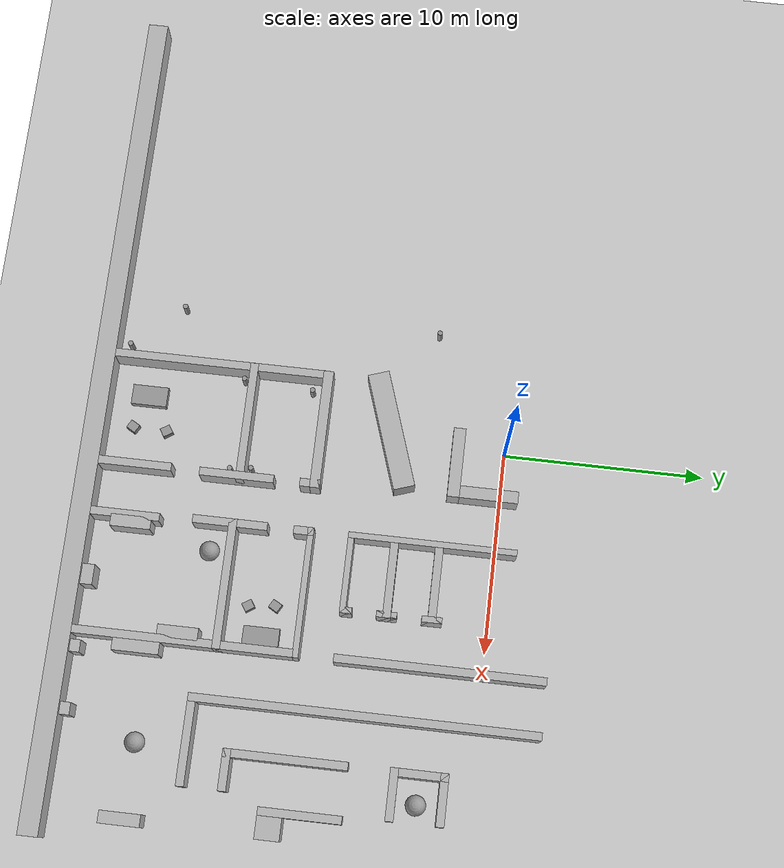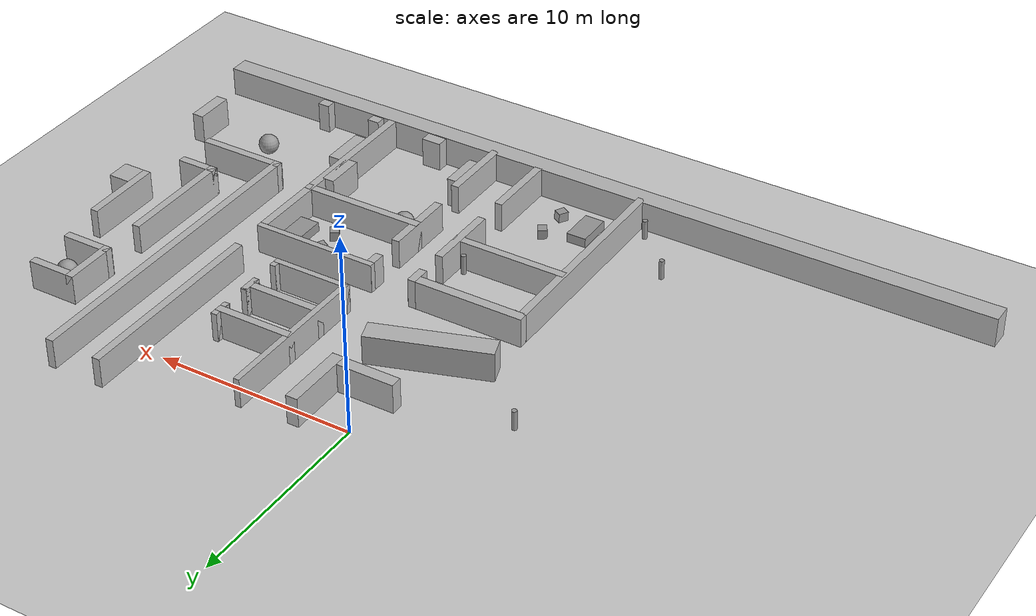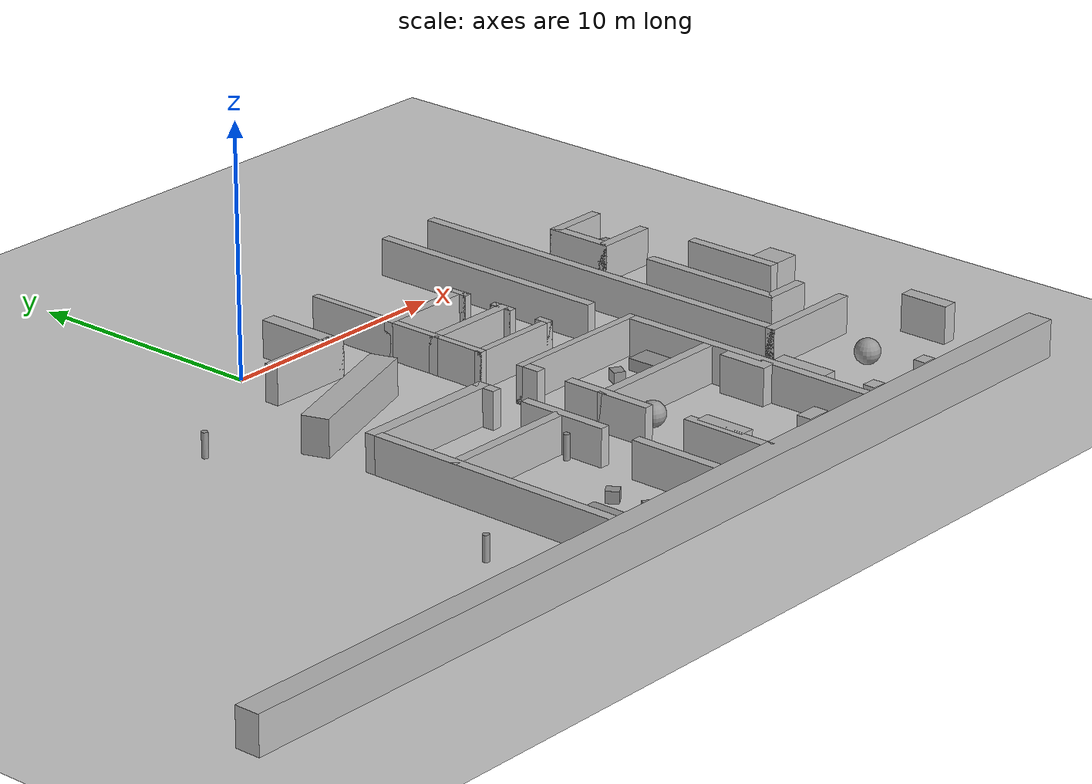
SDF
<sdf version="1.7">
 <world name="test_world">
  <model name="ground_plane">
   <static>1</static>
   <link name="link">
    <collision name="collision">
     <geometry><plane><normal>0 0 1</normal><size>100 100</size></plane></geometry>
    </collision>
    <visual name="visual">
     <geometry><plane><normal>0 0 1</normal><size>100 100</size></plane></geometry>
     <material>
      <script>
       <uri>file://media/materials/scripts/gazebo.material</uri>
       <name>__default__</name>
       <n>Gazebo/Grey</n>
      </script>
     </material>
    </visual>
   </link>
  </model>
  <model name="outer_bottom">
   <static>1</static>
   <pose>0 -20.5 0.75 0 -0 0</pose>
   <link name="link">
    <collision name="collision"><geometry><box><size>42 1 1.5</size></box></geometry></collision>
    <visual name="visual">
     <geometry><box><size>42 1 1.5</size></box></geometry>
     <material>
      <script>
       <uri>file://media/materials/scripts/gazebo.material</uri>
       <name>__default__</name>
       <n>Gazebo/Grey</n>
      </script>
     </material>
    </visual>
   </link>
  </model>
  <model name="hw_23">
   <static>1</static>
   <pose>-0.380805 -5.75282 0.75 0 -0 0.325273</pose>
   <link name="link">
    <collision name="collision"><geometry><box><size>6 1.07714 1.5</size></box></geometry></collision>
    <visual name="visual">
     <geometry><box><size>6 1.07714 1.5</size></box></geometry>
     <material>
      <script>
       <uri>file://media/materials/scripts/gazebo.material</uri>
       <name>__default__</name>
       <n>Gazebo/Grey</n>
      </script>
     </material>
    </visual>
   </link>
  </model>
  <model name="hw_24">
   <static>1</static>
   <pose>-0.05 -9.2 0.75 0 -0 0</pose>
   <link name="link">
    <collision name="collision"><geometry><box><size>6 0.5 1.5</size></box></geometry></collision>
    <visual name="visual">
     <geometry><box><size>6 0.5 1.5</size></box></geometry>
     <material>
      <script>
       <uri>file://media/materials/scripts/gazebo.material</uri>
       <name>__default__</name>
       <n>Gazebo/Grey</n>
      </script>
     </material>
    </visual>
   </link>
  </model>
  <model name="hw_25">
   <static>1</static>
   <pose>-0.05 -12.95 0.75 0 -0 0</pose>
   <link name="link">
    <collision name="collision"><geometry><box><size>6 0.4 1.5</size></box></geometry></collision>
    <visual name="visual">
     <geometry><box><size>6 0.4 1.5</size></box></geometry>
     <material>
      <script>
       <uri>file://media/materials/scripts/gazebo.material</uri>
       <name>__default__</name>
       <n>Gazebo/Grey</n>
      </script>
     </material>
    </visual>
   </link>
  </model>
  <model name="hw_31">
   <static>1</static>
   <pose>0.9 -2.35 0.75 0 -0 0</pose>
   <link name="link">
    <collision name="collision"><geometry><box><size>3.5 0.6 1.5</size></box></geometry></collision>
    <visual name="visual">
     <geometry><box><size>3.5 0.6 1.5</size></box></geometry>
     <material>
      <script>
       <uri>file://media/materials/scripts/gazebo.material</uri>
       <name>__default__</name>
       <n>Gazebo/Grey</n>
      </script>
     </material>
    </visual>
   </link>
  </model>
  <model name="hw_49">
   <static>1</static>
   <pose>6.95 -2.75 0.75 0 -0 0</pose>
   <link name="link">
    <collision name="collision"><geometry><box><size>4 0.4 1.5</size></box></geometry></collision>
    <visual name="visual">
     <geometry><box><size>4 0.4 1.5</size></box></geometry>
     <material>
      <script>
       <uri>file://media/materials/scripts/gazebo.material</uri>
       <name>__default__</name>
       <n>Gazebo/Grey</n>
      </script>
     </material>
    </visual>
   </link>
  </model>
  <model name="hw_50">
   <static>1</static>
   <pose>6.95 -4.95 0.75 0 -0 0</pose>
   <link name="link">
    <collision name="collision"><geometry><box><size>4 0.4 1.5</size></box></geometry></collision>
    <visual name="visual">
     <geometry><box><size>4 0.4 1.5</size></box></geometry>
     <material>
      <script>
       <uri>file://media/materials/scripts/gazebo.material</uri>
       <name>__default__</name>
       <n>Gazebo/Grey</n>
      </script>
     </material>
    </visual>
   </link>
  </model>
  <model name="hw_51">
   <static>1</static>
   <pose>6.95 -7.1 0.75 0 -0 0</pose>
   <link name="link">
    <collision name="collision"><geometry><box><size>4 0.3 1.5</size></box></geometry></collision>
    <visual name="visual">
     <geometry><box><size>4 0.3 1.5</size></box></geometry>
     <material>
      <script>
       <uri>file://media/materials/scripts/gazebo.material</uri>
       <name>__default__</name>
       <n>Gazebo/Grey</n>
      </script>
     </material>
    </visual>
   </link>
  </model>
  <model name="hw_53">
   <static>1</static>
   <pose>8.15 -9.1 0.75 0 -0 0</pose>
   <link name="link">
    <collision name="collision"><geometry><box><size>6.4 0.3 1.5</size></box></geometry></collision>
    <visual name="visual">
     <geometry><box><size>6.4 0.3 1.5</size></box></geometry>
     <material>
      <script>
       <uri>file://media/materials/scripts/gazebo.material</uri>
       <name>__default__</name>
       <n>Gazebo/Grey</n>
      </script>
     </material>
    </visual>
   </link>
  </model>
  <model name="hw_54">
   <static>1</static>
   <pose>8.15 -12.95 0.75 0 -0 0</pose>
   <link name="link">
    <collision name="collision"><geometry><box><size>6.4 0.4 1.5</size></box></geometry></collision>
    <visual name="visual">
     <geometry><box><size>6.4 0.4 1.5</size></box></geometry>
     <material>
      <script>
       <uri>file://media/materials/scripts/gazebo.material</uri>
       <name>__default__</name>
       <n>Gazebo/Grey</n>
      </script>
     </material>
    </visual>
   </link>
  </model>
  <model name="hw_94">
   <static>1</static>
   <pose>8.45 -19.65 0.75 0 -0 0</pose>
   <link name="link">
    <collision name="collision"><geometry><box><size>1 0.6 1.5</size></box></geometry></collision>
    <visual name="visual">
     <geometry><box><size>1 0.6 1.5</size></box></geometry>
     <material>
      <script>
       <uri>file://media/materials/scripts/gazebo.material</uri>
       <name>__default__</name>
       <n>Gazebo/Grey</n>
      </script>
     </material>
    </visual>
   </link>
  </model>
  <model name="hw_105">
   <static>1</static>
   <pose>8.8 -2.4 0.75 0 -0 0</pose>
   <link name="link">
    <collision name="collision"><geometry><box><size>0.3 0.3 1.5</size></box></geometry></collision>
    <visual name="visual">
     <geometry><box><size>0.3 0.3 1.5</size></box></geometry>
     <material>
      <script>
       <uri>file://media/materials/scripts/gazebo.material</uri>
       <name>__default__</name>
       <n>Gazebo/Grey</n>
      </script>
     </material>
    </visual>
   </link>
  </model>
  <model name="hw_106">
   <static>1</static>
   <pose>8.8 -3.1 0.75 0 -0 0</pose>
   <link name="link">
    <collision name="collision"><geometry><box><size>0.3 0.3 1.5</size></box></geometry></collision>
    <visual name="visual">
     <geometry><box><size>0.3 0.3 1.5</size></box></geometry>
     <material>
      <script>
       <uri>file://media/materials/scripts/gazebo.material</uri>
       <name>__default__</name>
       <n>Gazebo/Grey</n>
      </script>
     </material>
    </visual>
   </link>
  </model>
  <model name="hw_107">
   <static>1</static>
   <pose>8.8 -4.6 0.75 0 -0 0</pose>
   <link name="link">
    <collision name="collision"><geometry><box><size>0.3 0.3 1.5</size></box></geometry></collision>
    <visual name="visual">
     <geometry><box><size>0.3 0.3 1.5</size></box></geometry>
     <material>
      <script>
       <uri>file://media/materials/scripts/gazebo.material</uri>
       <name>__default__</name>
       <n>Gazebo/Grey</n>
      </script>
     </material>
    </visual>
   </link>
  </model>
  <model name="hw_108">
   <static>1</static>
   <pose>8.8 -5.3 0.75 0 -0 0</pose>
   <link name="link">
    <collision name="collision"><geometry><box><size>0.3 0.3 1.5</size></box></geometry></collision>
    <visual name="visual">
     <geometry><box><size>0.3 0.3 1.5</size></box></geometry>
     <material>
      <script>
       <uri>file://media/materials/scripts/gazebo.material</uri>
       <name>__default__</name>
       <n>Gazebo/Grey</n>
      </script>
     </material>
    </visual>
   </link>
  </model>
  <model name="hw_109">
   <static>1</static>
   <pose>8.8 -6.8 0.75 0 -0 0</pose>
   <link name="link">
    <collision name="collision"><geometry><box><size>0.3 0.3 1.5</size></box></geometry></collision>
    <visual name="visual">
     <geometry><box><size>0.3 0.3 1.5</size></box></geometry>
     <material>
      <script>
       <uri>file://media/materials/scripts/gazebo.material</uri>
       <name>__default__</name>
       <n>Gazebo/Grey</n>
      </script>
     </material>
    </visual>
   </link>
  </model>
  <model name="hw_122">
   <static>1</static>
   <pose>11.95 -19.7 0.75 0 -0 0</pose>
   <link name="link">
    <collision name="collision"><geometry><box><size>0.6 0.5 1.5</size></box></geometry></collision>
    <visual name="visual">
     <geometry><box><size>0.6 0.5 1.5</size></box></geometry>
     <material>
      <script>
       <uri>file://media/materials/scripts/gazebo.material</uri>
       <name>__default__</name>
       <n>Gazebo/Grey</n>
      </script>
     </material>
    </visual>
   </link>
  </model>
  <model name="hw_123">
   <static>1</static>
   <pose>15.75 -13.75 0.75 0 -0 0</pose>
   <link name="link">
    <collision name="collision"><geometry><box><size>4.4 0.4 1.5</size></box></geometry></collision>
    <visual name="visual">
     <geometry><box><size>4.4 0.4 1.5</size></box></geometry>
     <material>
      <script>
       <uri>file://media/materials/scripts/gazebo.material</uri>
       <name>__default__</name>
       <n>Gazebo/Grey</n>
      </script>
     </material>
    </visual>
   </link>
  </model>
  <model name="hw_124">
   <static>1</static>
   <pose>14.95 -19.7 0.75 0 -0 0</pose>
   <link name="link">
    <collision name="collision"><geometry><box><size>0.6 0.5 1.5</size></box></geometry></collision>
    <visual name="visual">
     <geometry><box><size>0.6 0.5 1.5</size></box></geometry>
     <material>
      <script>
       <uri>file://media/materials/scripts/gazebo.material</uri>
       <name>__default__</name>
       <n>Gazebo/Grey</n>
      </script>
     </material>
    </visual>
   </link>
  </model>
  <model name="hw_128">
   <static>1</static>
   <pose>16.95 -11.75 0.75 0 -0 0</pose>
   <link name="link">
    <collision name="collision"><geometry><box><size>2 0.4 1.5</size></box></geometry></collision>
    <visual name="visual">
     <geometry><box><size>2 0.4 1.5</size></box></geometry>
     <material>
      <script>
       <uri>file://media/materials/scripts/gazebo.material</uri>
       <name>__default__</name>
       <n>Gazebo/Grey</n>
      </script>
     </material>
    </visual>
   </link>
  </model>
  <model name="hw_130">
   <static>1</static>
   <pose>17.2 -1.35 0.75 0 -0 0</pose>
   <link name="link">
    <collision name="collision"><geometry><box><size>2.5 0.4 1.5</size></box></geometry></collision>
    <visual name="visual">
     <geometry><box><size>2.5 0.4 1.5</size></box></geometry>
     <material>
      <script>
       <uri>file://media/materials/scripts/gazebo.material</uri>
       <name>__default__</name>
       <n>Gazebo/Grey</n>
      </script>
     </material>
    </visual>
   </link>
  </model>
  <model name="hw_131">
   <static>1</static>
   <pose>17.2 -3.75 0.75 0 -0 0</pose>
   <link name="link">
    <collision name="collision"><geometry><box><size>2.5 0.4 1.5</size></box></geometry></collision>
    <visual name="visual">
     <geometry><box><size>2.5 0.4 1.5</size></box></geometry>
     <material>
      <script>
       <uri>file://media/materials/scripts/gazebo.material</uri>
       <name>__default__</name>
       <n>Gazebo/Grey</n>
      </script>
     </material>
    </visual>
   </link>
  </model>
  <model name="vw_233">
   <static>1</static>
   <pose>11.15 -2.1 0.75 0 -0 0</pose>
   <link name="link">
    <collision name="collision"><geometry><box><size>0.4 10.3 1.5</size></box></geometry></collision>
    <visual name="visual">
     <geometry><box><size>0.4 10.3 1.5</size></box></geometry>
     <material>
      <script>
       <uri>file://media/materials/scripts/gazebo.material</uri>
       <name>__default__</name>
       <n>Gazebo/Grey</n>
      </script>
     </material>
    </visual>
   </link>
  </model>
  <model name="vw_234">
   <static>1</static>
   <pose>13.75 -5.45 0.75 0 -0 0</pose>
   <link name="link">
    <collision name="collision"><geometry><box><size>0.4 17 1.5</size></box></geometry></collision>
    <visual name="visual">
     <geometry><box><size>0.4 17 1.5</size></box></geometry>
     <material>
      <script>
       <uri>file://media/materials/scripts/gazebo.material</uri>
       <name>__default__</name>
       <n>Gazebo/Grey</n>
      </script>
     </material>
    </visual>
   </link>
  </model>
  <model name="vw_238">
   <static>1</static>
   <pose>5.1 -3.1 0.75 0 -0 0</pose>
   <link name="link">
    <collision name="collision"><geometry><box><size>0.3 8.3 1.5</size></box></geometry></collision>
    <visual name="visual">
     <geometry><box><size>0.3 8.3 1.5</size></box></geometry>
     <material>
      <script>
       <uri>file://media/materials/scripts/gazebo.material</uri>
       <name>__default__</name>
       <n>Gazebo/Grey</n>
      </script>
     </material>
    </visual>
   </link>
  </model>
  <model name="vw_239">
   <static>1</static>
   <pose>2.35 -0.9 0.75 0 -0 0</pose>
   <link name="link">
    <collision name="collision"><geometry><box><size>0.6 3.5 1.5</size></box></geometry></collision>
    <visual name="visual">
     <geometry><box><size>0.6 3.5 1.5</size></box></geometry>
     <material>
      <script>
       <uri>file://media/materials/scripts/gazebo.material</uri>
       <name>__default__</name>
       <n>Gazebo/Grey</n>
      </script>
     </material>
    </visual>
   </link>
  </model>
  <model name="vw_240">
   <static>1</static>
   <pose>16.15 -2.55 0.75 0 -0 0</pose>
   <link name="link">
    <collision name="collision"><geometry><box><size>0.4 2.8 1.5</size></box></geometry></collision>
    <visual name="visual">
     <geometry><box><size>0.4 2.8 1.5</size></box></geometry>
     <material>
      <script>
       <uri>file://media/materials/scripts/gazebo.material</uri>
       <name>__default__</name>
       <n>Gazebo/Grey</n>
      </script>
     </material>
    </visual>
   </link>
  </model>
  <model name="vw_243">
   <static>1</static>
   <pose>8.8 -2.75 0.75 0 -0 0</pose>
   <link name="link">
    <collision name="collision"><geometry><box><size>0.3 1 1.5</size></box></geometry></collision>
    <visual name="visual">
     <geometry><box><size>0.3 1 1.5</size></box></geometry>
     <material>
      <script>
       <uri>file://media/materials/scripts/gazebo.material</uri>
       <name>__default__</name>
       <n>Gazebo/Grey</n>
      </script>
     </material>
    </visual>
   </link>
  </model>
  <model name="vw_244">
   <static>1</static>
   <pose>8.8 -4.95 0.75 0 -0 0</pose>
   <link name="link">
    <collision name="collision"><geometry><box><size>0.3 1 1.5</size></box></geometry></collision>
    <visual name="visual">
     <geometry><box><size>0.3 1 1.5</size></box></geometry>
     <material>
      <script>
       <uri>file://media/materials/scripts/gazebo.material</uri>
       <name>__default__</name>
       <n>Gazebo/Grey</n>
      </script>
     </material>
    </visual>
   </link>
  </model>
  <model name="vw_245">
   <static>1</static>
   <pose>18.65 -7.95 0.75 0 -0 0</pose>
   <link name="link">
    <collision name="collision"><geometry><box><size>0.4 4 1.5</size></box></geometry></collision>
    <visual name="visual">
     <geometry><box><size>0.4 4 1.5</size></box></geometry>
     <material>
      <script>
       <uri>file://media/materials/scripts/gazebo.material</uri>
       <name>__default__</name>
       <n>Gazebo/Grey</n>
      </script>
     </material>
    </visual>
   </link>
  </model>
  <model name="vw_246">
   <static>1</static>
   <pose>16.15 -8.95 0.75 0 -0 0</pose>
   <link name="link">
    <collision name="collision"><geometry><box><size>0.4 6 1.5</size></box></geometry></collision>
    <visual name="visual">
     <geometry><box><size>0.4 6 1.5</size></box></geometry>
     <material>
      <script>
       <uri>file://media/materials/scripts/gazebo.material</uri>
       <name>__default__</name>
       <n>Gazebo/Grey</n>
      </script>
     </material>
    </visual>
   </link>
  </model>
  <model name="vw_247">
   <static>1</static>
   <pose>8.8 -6.95 0.75 0 -0 0</pose>
   <link name="link">
    <collision name="collision"><geometry><box><size>0.3 0.6 1.5</size></box></geometry></collision>
    <visual name="visual">
     <geometry><box><size>0.3 0.6 1.5</size></box></geometry>
     <material>
      <script>
       <uri>file://media/materials/scripts/gazebo.material</uri>
       <name>__default__</name>
       <n>Gazebo/Grey</n>
      </script>
     </material>
    </visual>
   </link>
  </model>
  <model name="vw_248">
   <static>1</static>
   <pose>19.4 -9.35 0.75 0 -0 0</pose>
   <link name="link">
    <collision name="collision"><geometry><box><size>1.1 1.2 1.5</size></box></geometry></collision>
    <visual name="visual">
     <geometry><box><size>1.1 1.2 1.5</size></box></geometry>
     <material>
      <script>
       <uri>file://media/materials/scripts/gazebo.material</uri>
       <name>__default__</name>
       <n>Gazebo/Grey</n>
      </script>
     </material>
    </visual>
   </link>
  </model>
  <model name="vw_249">
   <static>1</static>
   <pose>2.75 -9.45 0.75 0 -0 0</pose>
   <link name="link">
    <collision name="collision"><geometry><box><size>0.4 1 1.5</size></box></geometry></collision>
    <visual name="visual">
     <geometry><box><size>0.4 1 1.5</size></box></geometry>
     <material>
      <script>
       <uri>file://media/materials/scripts/gazebo.material</uri>
       <name>__default__</name>
       <n>Gazebo/Grey</n>
      </script>
     </material>
    </visual>
   </link>
  </model>
  <model name="vw_250">
   <static>1</static>
   <pose>5.15 -9.45 0.75 0 -0 0</pose>
   <link name="link">
    <collision name="collision"><geometry><box><size>0.4 1 1.5</size></box></geometry></collision>
    <visual name="visual">
     <geometry><box><size>0.4 1 1.5</size></box></geometry>
     <material>
      <script>
       <uri>file://media/materials/scripts/gazebo.material</uri>
       <name>__default__</name>
       <n>Gazebo/Grey</n>
      </script>
     </material>
    </visual>
   </link>
  </model>
  <model name="vw_253">
   <static>1</static>
   <pose>11.15 -14.6192 0.75 0 -0 0</pose>
   <link name="link">
    <collision name="collision"><geometry><box><size>0.4 10.7833 1.5</size></box></geometry></collision>
    <visual name="visual">
     <geometry><box><size>0.4 10.7833 1.5</size></box></geometry>
     <material>
      <script>
       <uri>file://media/materials/scripts/gazebo.material</uri>
       <name>__default__</name>
       <n>Gazebo/Grey</n>
      </script>
     </material>
    </visual>
   </link>
  </model>
  <model name="vw_254">
   <static>1</static>
   <pose>2.75 -13.1 0.75 0 -0 0</pose>
   <link name="link">
    <collision name="collision"><geometry><box><size>0.4 3.7 1.5</size></box></geometry></collision>
    <visual name="visual">
     <geometry><box><size>0.4 3.7 1.5</size></box></geometry>
     <material>
      <script>
       <uri>file://media/materials/scripts/gazebo.material</uri>
       <name>__default__</name>
       <n>Gazebo/Grey</n>
      </script>
     </material>
    </visual>
   </link>
  </model>
  <model name="vw_255">
   <static>1</static>
   <pose>5.15 -13.1 0.75 0 -0 0</pose>
   <link name="link">
    <collision name="collision"><geometry><box><size>0.4 3.7 1.5</size></box></geometry></collision>
    <visual name="visual">
     <geometry><box><size>0.4 3.7 1.5</size></box></geometry>
     <material>
      <script>
       <uri>file://media/materials/scripts/gazebo.material</uri>
       <name>__default__</name>
       <n>Gazebo/Grey</n>
      </script>
     </material>
    </visual>
   </link>
  </model>
  <model name="vw_257">
   <static>1</static>
   <pose>11.65 -16.8 0.75 0 -0 0</pose>
   <link name="link">
    <collision name="collision"><geometry><box><size>0.6 2.3 1.5</size></box></geometry></collision>
    <visual name="visual">
     <geometry><box><size>0.6 2.3 1.5</size></box></geometry>
     <material>
      <script>
       <uri>file://media/materials/scripts/gazebo.material</uri>
       <name>__default__</name>
       <n>Gazebo/Grey</n>
      </script>
     </material>
    </visual>
   </link>
  </model>
  <model name="vw_258">
   <static>1</static>
   <pose>5.65 -17.95 0.75 0 -0 0</pose>
   <link name="link">
    <collision name="collision"><geometry><box><size>0.6 2 1.5</size></box></geometry></collision>
    <visual name="visual">
     <geometry><box><size>0.6 2 1.5</size></box></geometry>
     <material>
      <script>
       <uri>file://media/materials/scripts/gazebo.material</uri>
       <name>__default__</name>
       <n>Gazebo/Grey</n>
      </script>
     </material>
    </visual>
   </link>
  </model>
  <model name="vw_253_clone">
   <static>1</static>
   <pose>-2.85707 -14.8442 0.75 0 -0 0</pose>
   <link name="link">
    <collision name="collision"><geometry><box><size>0.4 10.9154 1.5</size></box></geometry></collision>
    <visual name="visual">
     <geometry><box><size>0.4 10.9154 1.5</size></box></geometry>
     <material>
      <script>
       <uri>file://media/materials/scripts/gazebo.material</uri>
       <name>__default__</name>
       <n>Gazebo/Grey</n>
      </script>
     </material>
    </visual>
   </link>
  </model>
  <model name="vw_254_clone">
   <static>1</static>
   <pose>2.71203 -18.2093 0.75 0 -0 0</pose>
   <link name="link">
    <collision name="collision"><geometry><box><size>0.4 3.7 1.5</size></box></geometry></collision>
    <visual name="visual">
     <geometry><box><size>0.4 3.7 1.5</size></box></geometry>
     <material>
      <script>
       <uri>file://media/materials/scripts/gazebo.material</uri>
       <name>__default__</name>
       <n>Gazebo/Grey</n>
      </script>
     </material>
    </visual>
   </link>
  </model>
  <model name="vw_254_clone_0">
   <static>1</static>
   <pose>5.28532 -18.4245 0.75 0 -0 0</pose>
   <link name="link">
    <collision name="collision"><geometry><box><size>0.4 3.7 1.5</size></box></geometry></collision>
    <visual name="visual">
     <geometry><box><size>0.4 3.7 1.5</size></box></geometry>
     <material>
      <script>
       <uri>file://media/materials/scripts/gazebo.material</uri>
       <name>__default__</name>
       <n>Gazebo/Grey</n>
      </script>
     </material>
    </visual>
   </link>
  </model>
  <model name="unit_box_clone">
   <pose>-1.04895 -18.1276 0.239131 0 -1e-05 -5e-06</pose>
   <link name="link">
    <inertial>
     <mass>1</mass>
     <inertia>
      <ixx>0.166667</ixx>
      <ixy>0</ixy>
      <ixz>0</ixz>
      <iyy>0.166667</iyy>
      <iyz>0</iyz>
      <izz>0.166667</izz>
     </inertia>
    </inertial>
    <collision name="collision"><geometry><box><size>1 1.7849 0.478272</size></box></geometry></collision>
    <visual name="visual">
     <geometry><box><size>1 1.7849 0.478272</size></box></geometry>
     <material>
      <script><name>Gazebo/Grey</name><uri>file://media/materials/scripts/gazebo.material</uri></script>
     </material>
    </visual>
   </link>
  </model>
  <model name="unit_box_0">
   <pose>0.678588 -17.0336 0.235786 0 -0 0.572818</pose>
   <link name="link">
    <inertial>
     <mass>1</mass>
     <inertia>
      <ixx>0.166667</ixx>
      <ixy>0</ixy>
      <ixz>0</ixz>
      <iyy>0.166667</iyy>
      <iyz>0</iyz>
      <izz>0.166667</izz>
     </inertia>
    </inertial>
    <collision name="collision">
     <geometry><box><size>0.450934 0.510982 0.471572</size></box></geometry>
    </collision>
    <visual name="visual">
     <geometry><box><size>0.450934 0.510982 0.471572</size></box></geometry>
     <material>
      <script><name>Gazebo/Grey</name><uri>file://media/materials/scripts/gazebo.material</uri></script>
     </material>
    </visual>
   </link>
  </model>
  <model name="unit_box_0_clone">
   <pose>0.623996 -18.7315 0.235786 0 -0 -0.520666</pose>
   <link name="link">
    <inertial>
     <mass>1</mass>
     <inertia>
      <ixx>0.166667</ixx>
      <ixy>0</ixy>
      <ixz>0</ixz>
      <iyy>0.166667</iyy>
      <iyz>0</iyz>
      <izz>0.166667</izz>
     </inertia>
    </inertial>
    <collision name="collision">
     <geometry><box><size>0.450934 0.510983 0.471572</size></box></geometry>
    </collision>
    <visual name="visual">
     <geometry><box><size>0.450934 0.510983 0.471572</size></box></geometry>
     <material>
      <script><name>Gazebo/Grey</name><uri>file://media/materials/scripts/gazebo.material</uri></script>
     </material>
    </visual>
   </link>
  </model>
  <model name="unit_sphere_0">
   <pose>16.1124 -16.3022 0.5 0 -0 0</pose>
   <link name="link">
    <inertial>
     <mass>1</mass>
     <inertia><ixx>0.1</ixx><ixy>0</ixy><ixz>0</ixz><iyy>0.1</iyy><iyz>0</iyz><izz>0.1</izz></inertia>
    </inertial>
    <collision name="collision"><geometry><sphere><radius>0.5</radius></sphere></geometry></collision>
    <visual name="visual">
     <geometry><sphere><radius>0.5</radius></sphere></geometry>
     <material>
      <script><name>Gazebo/Grey</name><uri>file://media/materials/scripts/gazebo.material</uri></script>
     </material>
    </visual>
   </link>
  </model>
  <model name="unit_sphere_4">
   <pose>17.5557 -2.58143 0.5 0 -0 0</pose>
   <link name="link">
    <inertial>
     <mass>1</mass>
     <inertia><ixx>0.1</ixx><ixy>0</ixy><ixz>0</ixz><iyy>0.1</iyy><iyz>0</iyz><izz>0.1</izz></inertia>
    </inertial>
    <collision name="collision"><geometry><sphere><radius>0.5</radius></sphere></geometry></collision>
    <visual name="visual">
     <geometry><sphere><radius>0.5</radius></sphere></geometry>
     <material>
      <script><name>Gazebo/Grey</name><uri>file://media/materials/scripts/gazebo.material</uri></script>
     </material>
    </visual>
   </link>
  </model>
  <model name="unit_cylinder_clone">
   <pose>-2.12146 -9.93955 0.499991 -0 -0 -1.7e-05</pose>
   <link name="link">
    <inertial>
     <mass>1</mass>
     <inertia><ixx>0.145833</ixx><ixy>0</ixy><ixz>0</ixz><iyy>0.145833</iyy><iyz>0</iyz><izz>0.125</izz></inertia>
    </inertial>
    <collision name="collision">
     <geometry><cylinder><radius>0.124927</radius><length>1</length></cylinder></geometry>
    </collision>
    <visual name="visual">
     <geometry><cylinder><radius>0.124927</radius><length>1</length></cylinder></geometry>
     <material>
      <script><name>Gazebo/Grey</name><uri>file://media/materials/scripts/gazebo.material</uri></script>
     </material>
    </visual>
   </link>
  </model>
  <model name="unit_cylinder_clone_0">
   <pose>2.20827 -12.5009 0.499998 0 0 -1.6e-05</pose>
   <link name="link">
    <inertial>
     <mass>1</mass>
     <inertia><ixx>0.145833</ixx><ixy>0</ixy><ixz>0</ixz><iyy>0.145833</iyy><iyz>0</iyz><izz>0.125</izz></inertia>
    </inertial>
    <collision name="collision">
     <geometry><cylinder><radius>0.124927</radius><length>1</length></cylinder></geometry>
    </collision>
    <visual name="visual">
     <geometry><cylinder><radius>0.124927</radius><length>1</length></cylinder></geometry>
     <material>
      <script><name>Gazebo/Grey</name><uri>file://media/materials/scripts/gazebo.material</uri></script>
     </material>
    </visual>
   </link>
  </model>
  <model name="unit_cylinder_clone_1">
   <pose>-2.34508 -13.428 0.499998 0 0 -1.6e-05</pose>
   <link name="link">
    <inertial>
     <mass>1</mass>
     <inertia><ixx>0.145833</ixx><ixy>0</ixy><ixz>0</ixz><iyy>0.145833</iyy><iyz>0</iyz><izz>0.125</izz></inertia>
    </inertial>
    <collision name="collision">
     <geometry><cylinder><radius>0.124927</radius><length>1</length></cylinder></geometry>
    </collision>
    <visual name="visual">
     <geometry><cylinder><radius>0.124927</radius><length>1</length></cylinder></geometry>
     <material>
      <script><name>Gazebo/Grey</name><uri>file://media/materials/scripts/gazebo.material</uri></script>
     </material>
    </visual>
   </link>
  </model>
  <model name="unit_cylinder_clone_2">
   <pose>2.3254 -13.5476 0.499991 -0 -0 -1.6e-05</pose>
   <link name="link">
    <inertial>
     <mass>1</mass>
     <inertia><ixx>0.145833</ixx><ixy>0</ixy><ixz>0</ixz><iyy>0.145833</iyy><iyz>0</iyz><izz>0.125</izz></inertia>
    </inertial>
    <collision name="collision">
     <geometry><cylinder><radius>0.124927</radius><length>1</length></cylinder></geometry>
    </collision>
    <visual name="visual">
     <geometry><cylinder><radius>0.124927</radius><length>1</length></cylinder></geometry>
     <material>
      <script><name>Gazebo/Grey</name><uri>file://media/materials/scripts/gazebo.material</uri></script>
     </material>
    </visual>
   </link>
  </model>
  <model name="unit_cylinder_clone_8">
   <pose>-3.54179 -19.4113 0.499991 -0 -0 -1.5e-05</pose>
   <link name="link">
    <inertial>
     <mass>1</mass>
     <inertia><ixx>0.145833</ixx><ixy>0</ixy><ixz>0</ixz><iyy>0.145833</iyy><iyz>0</iyz><izz>0.125</izz></inertia>
    </inertial>
    <collision name="collision">
     <geometry><cylinder><radius>0.124927</radius><length>1</length></cylinder></geometry>
    </collision>
    <visual name="visual">
     <geometry><cylinder><radius>0.124927</radius><length>1</length></cylinder></geometry>
     <material>
      <script><name>Gazebo/Grey</name><uri>file://media/materials/scripts/gazebo.material</uri></script>
     </material>
    </visual>
   </link>
  </model>
  <model name="unit_cylinder_clone_9">
   <pose>-5.79484 -16.9242 0.499991 -0 -0 -1.4e-05</pose>
   <link name="link">
    <inertial>
     <mass>1</mass>
     <inertia><ixx>0.145833</ixx><ixy>0</ixy><ixz>0</ixz><iyy>0.145833</iyy><iyz>0</iyz><izz>0.125</izz></inertia>
    </inertial>
    <collision name="collision">
     <geometry><cylinder><radius>0.124927</radius><length>1</length></cylinder></geometry>
    </collision>
    <visual name="visual">
     <geometry><cylinder><radius>0.124927</radius><length>1</length></cylinder></geometry>
     <material>
      <script><name>Gazebo/Grey</name><uri>file://media/materials/scripts/gazebo.material</uri></script>
     </material>
    </visual>
   </link>
  </model>
  <model name="unit_box_clone_clone">
   <pose>10.4499 -10.9558 0.239131 0 1e-05 -4e-06</pose>
   <link name="link">
    <inertial>
     <mass>1</mass>
     <inertia>
      <ixx>0.166667</ixx>
      <ixy>0</ixy>
      <ixz>0</ixz>
      <iyy>0.166667</iyy>
      <iyz>0</iyz>
      <izz>0.166667</izz>
     </inertia>
    </inertial>
    <collision name="collision"><geometry><box><size>1 1.7849 0.478272</size></box></geometry></collision>
    <visual name="visual">
     <geometry><box><size>1 1.7849 0.478272</size></box></geometry>
     <material>
      <script><name>Gazebo/Grey</name><uri>file://media/materials/scripts/gazebo.material</uri></script>
     </material>
    </visual>
   </link>
  </model>
  <model name="vw_258_clone">
   <static>1</static>
   <pose>10.7704 -14.8869 0.75 0 -0 0</pose>
   <link name="link">
    <collision name="collision"><geometry><box><size>0.6 2 1.5</size></box></geometry></collision>
    <visual name="visual">
     <geometry><box><size>0.6 2 1.5</size></box></geometry>
     <material>
      <script>
       <uri>file://media/materials/scripts/gazebo.material</uri>
       <name>__default__</name>
       <n>Gazebo/Grey</n>
      </script>
     </material>
    </visual>
   </link>
  </model>
  <model name="vw_258_clone_0">
   <static>1</static>
   <pose>19.7352 -16.3517 0.75 0 -0 0</pose>
   <link name="link">
    <collision name="collision"><geometry><box><size>0.6 2 1.5</size></box></geometry></collision>
    <visual name="visual">
     <geometry><box><size>0.6 2 1.5</size></box></geometry>
     <material>
      <script>
       <uri>file://media/materials/scripts/gazebo.material</uri>
       <name>__default__</name>
       <n>Gazebo/Grey</n>
      </script>
     </material>
    </visual>
   </link>
  </model>
  <model name="unit_box_0_clone_0">
   <pose>8.96749 -11.7589 0.235786 0 -0 0.572818</pose>
   <link name="link">
    <inertial>
     <mass>1</mass>
     <inertia>
      <ixx>0.166667</ixx>
      <ixy>0</ixy>
      <ixz>0</ixz>
      <iyy>0.166667</iyy>
      <iyz>0</iyz>
      <izz>0.166667</izz>
     </inertia>
    </inertial>
    <collision name="collision">
     <geometry><box><size>0.450934 0.510982 0.471572</size></box></geometry>
    </collision>
    <visual name="visual">
     <geometry><box><size>0.450934 0.510982 0.471572</size></box></geometry>
     <material>
      <script><name>Gazebo/Grey</name><uri>file://media/materials/scripts/gazebo.material</uri></script>
     </material>
    </visual>
   </link>
  </model>
  <model name="unit_box_0_clone_clone_0">
   <pose>8.84037 -10.4347 0.235786 0 -0 -0.520666</pose>
   <link name="link">
    <inertial>
     <mass>1</mass>
     <inertia>
      <ixx>0.166667</ixx>
      <ixy>0</ixy>
      <ixz>0</ixz>
      <iyy>0.166667</iyy>
      <iyz>0</iyz>
      <izz>0.166667</izz>
     </inertia>
    </inertial>
    <collision name="collision">
     <geometry><box><size>0.450934 0.510983 0.471572</size></box></geometry>
    </collision>
    <visual name="visual">
     <geometry><box><size>0.450934 0.510983 0.471572</size></box></geometry>
     <material>
      <script><name>Gazebo/Grey</name><uri>file://media/materials/scripts/gazebo.material</uri></script>
     </material>
    </visual>
   </link>
  </model>
  <model name="unit_cylinder_clone_1_clone">
   <pose>-5.82438 -3.86156 0.499991 -0 -0 -1.7e-05</pose>
   <link name="link">
    <inertial>
     <mass>1</mass>
     <inertia><ixx>0.145833</ixx><ixy>0</ixy><ixz>0</ixz><iyy>0.145833</iyy><iyz>0</iyz><izz>0.125</izz></inertia>
    </inertial>
    <collision name="collision">
     <geometry><cylinder><radius>0.124927</radius><length>1</length></cylinder></geometry>
    </collision>
    <visual name="visual">
     <geometry><cylinder><radius>0.124927</radius><length>1</length></cylinder></geometry>
     <material>
      <script><name>Gazebo/Grey</name><uri>file://media/materials/scripts/gazebo.material</uri></script>
     </material>
    </visual>
   </link>
  </model>
  <model name="unit_sphere_0_clone">
   <pose>6.51529 -14.0126 0.5 0 -0 0</pose>
   <link name="link">
    <inertial>
     <mass>1</mass>
     <inertia><ixx>0.1</ixx><ixy>0</ixy><ixz>0</ixz><iyy>0.1</iyy><iyz>0</iyz><izz>0.1</izz></inertia>
    </inertial>
    <collision name="collision"><geometry><sphere><radius>0.5</radius></sphere></geometry></collision>
    <visual name="visual">
     <geometry><sphere><radius>0.5</radius></sphere></geometry>
     <material>
      <script><name>Gazebo/Grey</name><uri>file://media/materials/scripts/gazebo.material</uri></script>
     </material>
    </visual>
   </link>
  </model>
 </world>
</sdf>
